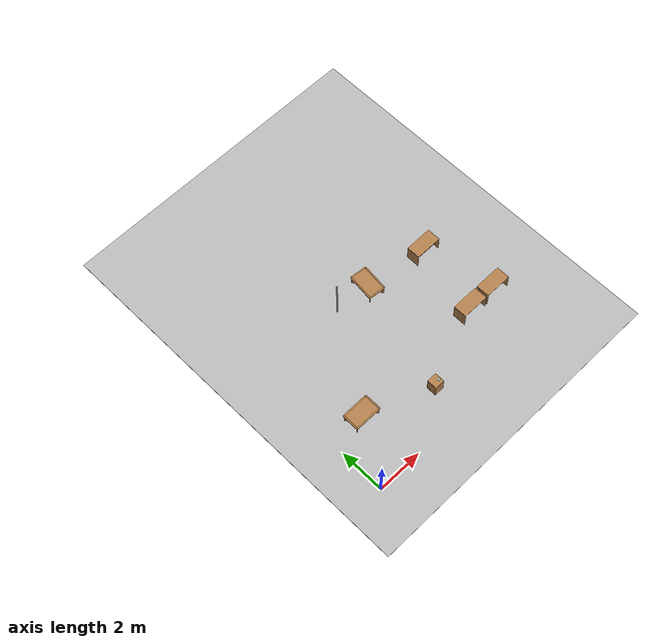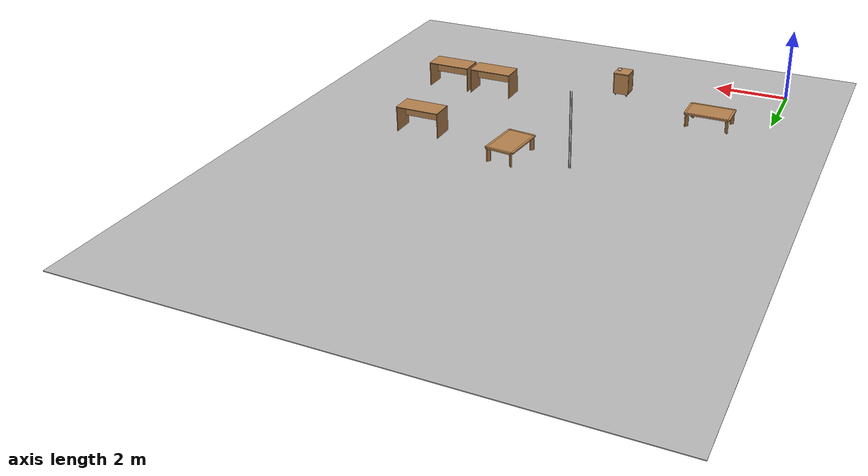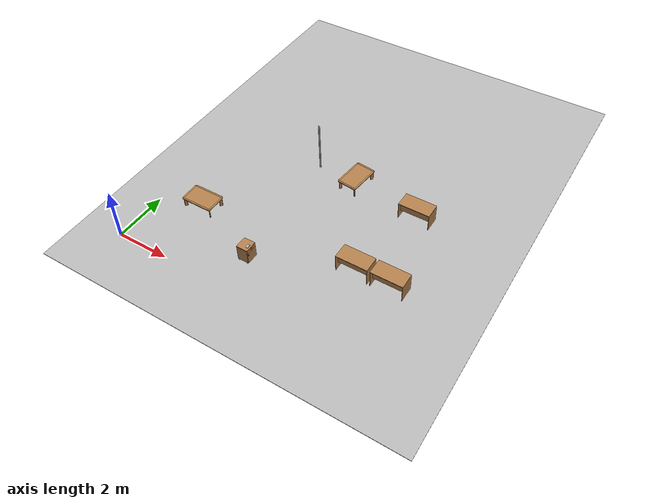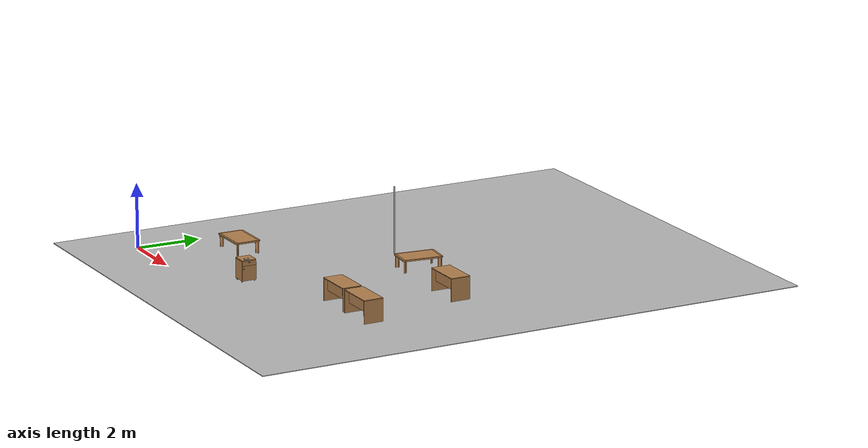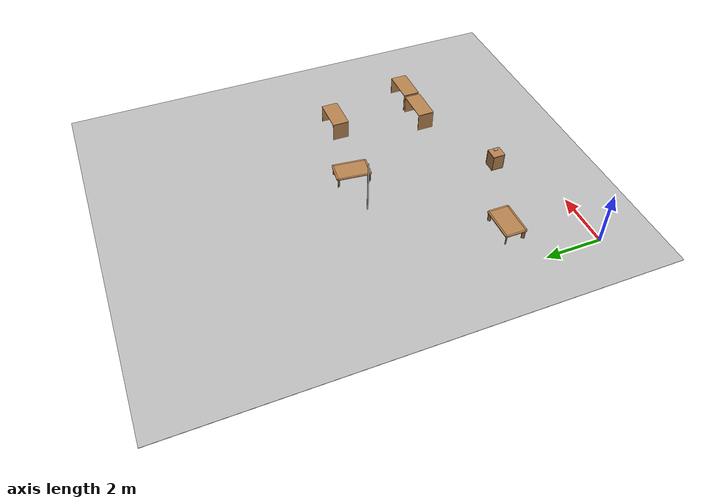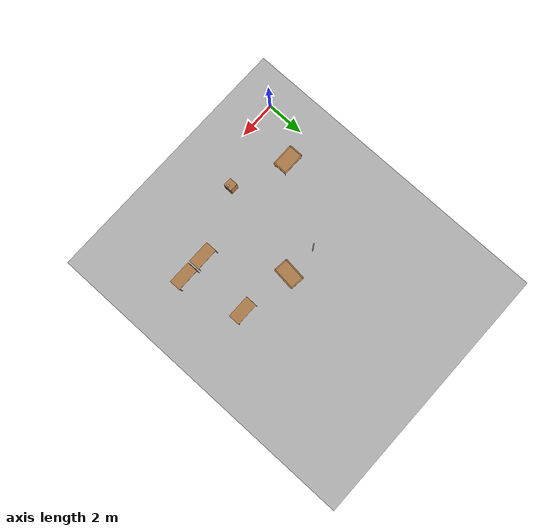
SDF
<sdf version="1.6">
 <world name="default">
  <model name="gplane">
   <pose>5.0375 6.59 0 0 -0 0</pose>
   <link name="body">
    <collision name="gplane_coll">
     <geometry><plane><normal>0 0 1</normal><size>10.075 13.18</size></plane></geometry>
     <surface><contact><ode><kp>1e+06</kp><kd>1</kd></ode></contact></surface>
     <laser_retro>2000</laser_retro>
    </collision>
    <visual name="gplane_vis">
     <geometry><plane><normal>0 0 1</normal><size>10.075 13.18</size></plane></geometry>
     <material>
      <script>
       <uri>model://base_materials/carpet/scripts</uri>
       <uri>model://base_materials/carpet/textures</uri>
       <name>carpet/carpet01</name>
      </script>
     </material>
     <cast_shadows>0</cast_shadows>
    </visual>
    <velocity_decay><linear>0</linear><angular>0</angular></velocity_decay>
   </link>
   <static>1</static>
  </model>
  <model name="door_stopper_x05y09a">
   <link name="door_frame">
    <visual name="stopper">
     <pose>0.0225 0.0175 1.025 0 -0 0</pose>
     <geometry><box><size>0.01 0.035 2.05</size></box></geometry>
     <material>
      <script><uri>model://base_materials/color/scripts</uri><name>hsr_color/white</name></script>
     </material>
    </visual>
    <collision name="collision_frame_1">
     <pose>0.0225 0.0175 1.025 0 -0 0</pose>
     <geometry><box><size>0.01 0.035 2.05</size></box></geometry>
    </collision>
    <visual name="frame_2">
     <pose>-0.0225 0.0175 1.025 0 -0 0</pose>
     <geometry><box><size>0.01 0.035 2.05</size></box></geometry>
     <material>
      <script><uri>model://base_materials/color/scripts</uri><name>hsr_color/white</name></script>
     </material>
    </visual>
    <collision name="collision_frame_2">
     <pose>-0.0225 0.0175 1.025 0 -0 0</pose>
     <geometry><box><size>0.01 0.035 2.05</size></box></geometry>
    </collision>
   </link>
   <static>1</static>
   <pose>4.075 6.425 0 0 -0 0</pose>
  </model>
  <model name="wagon">
   <link name="link">
    <inertial>
     <mass>10</mass>
     <inertia><ixx>1</ixx><ixy>0</ixy><ixz>0</ixz><iyy>1</iyy><iyz>0</iyz><izz>1</izz></inertia>
    </inertial>
    <visual name="left_board">
     <pose>-0.2325 0.01 0.345 0 -0 0</pose>
     <geometry><box><size>0.415 0.02 0.59</size></box></geometry>
     <material>
      <script><uri>model://base_materials/wood/scripts/wood.material</uri><name>base_materials/wood</name></script>
     </material>
    </visual>
    <collision name="collision_left_board">
     <pose>-0.2325 0.01 0.345 0 -0 0</pose>
     <geometry><box><size>0.415 0.02 0.59</size></box></geometry>
    </collision>
    <visual name="right_board">
     <pose>-0.2325 0.4325 0.345 0 -0 0</pose>
     <geometry><box><size>0.415 0.02 0.59</size></box></geometry>
     <material>
      <script><uri>model://base_materials/wood/scripts/wood.material</uri><name>base_materials/wood</name></script>
     </material>
    </visual>
    <collision name="collision_right_board">
     <pose>-0.2325 0.4325 0.345 0 -0 0</pose>
     <geometry><box><size>0.415 0.02 0.59</size></box></geometry>
    </collision>
    <visual name="top_board">
     <pose>-0.22 0.2225 0.655 0 -0 0</pose>
     <geometry><box><size>0.44 0.445 0.03</size></box></geometry>
     <material>
      <script><uri>model://base_materials/wood/scripts/wood.material</uri><name>base_materials/wood</name></script>
     </material>
    </visual>
    <collision name="collision_top_board">
     <pose>-0.22 0.2225 0.655 0 -0 0</pose>
     <geometry><box><size>0.44 0.445 0.03</size></box></geometry>
    </collision>
    <visual name="back_board">
     <pose>-0.425 0.2225 0.345 0 -0 0</pose>
     <geometry><box><size>0.02 0.405 0.59</size></box></geometry>
     <material>
      <script><uri>model://base_materials/wood/scripts/wood.material</uri><name>base_materials/wood</name></script>
     </material>
    </visual>
    <collision name="collision_back_board">
     <pose>-0.425 0.2225 0.345 0 -0 0</pose>
     <geometry><box><size>0.02 0.405 0.59</size></box></geometry>
    </collision>
    <visual name="bottom_board">
     <pose>-0.2325 0.2225 0.06 0 -0 0</pose>
     <geometry><box><size>0.415 0.405 0.02</size></box></geometry>
     <material>
      <script><uri>model://base_materials/wood/scripts/wood.material</uri><name>base_materials/wood</name></script>
     </material>
    </visual>
    <collision name="collision_bottom_board">
     <pose>-0.2325 0.2225 0.06 0 -0 0</pose>
     <geometry><box><size>0.415 0.405 0.02</size></box></geometry>
    </collision>
    <visual name="1st_drawer">
     <pose>-0.0125 0.2225 0.57 0 -0 0</pose>
     <geometry><box><size>0.025 0.445 0.14</size></box></geometry>
     <material>
      <script><uri>model://base_materials/wood/scripts/wood.material</uri><name>base_materials/wood</name></script>
     </material>
    </visual>
    <collision name="collision_1st_drawer">
     <pose>-0.0125 0.2225 0.57 0 -0 0</pose>
     <geometry><box><size>0.025 0.445 0.14</size></box></geometry>
    </collision>
    <visual name="1st_drawer_handle_l1">
     <pose>0.0115 0.1895 0.6 3.14159 1.57079 3.14159</pose>
     <geometry><cylinder><radius>0.007</radius><length>0.023</length></cylinder></geometry>
     <material>
      <ambient>0.18431 0.3098 0.3098 1</ambient>
      <diffuse>0.18431 0.3098 0.3098 1</diffuse>
      <specular>0.1 0.1 0.1 1</specular>
     </material>
    </visual>
    <collision name="collision_1st_drawer_handle_l1">
     <pose>0.0115 0.1895 0.6 3.14159 1.57079 3.14159</pose>
     <geometry><cylinder><radius>0.007</radius><length>0.023</length></cylinder></geometry>
    </collision>
    <visual name="1st_drawer_handle_l2">
     <pose>0.023 0.1895 0.6 0 -0 0</pose>
     <geometry><sphere><radius>0.007</radius></sphere></geometry>
     <material>
      <ambient>0.18431 0.3098 0.3098 1</ambient>
      <diffuse>0.18431 0.3098 0.3098 1</diffuse>
      <specular>0.1 0.1 0.1 1</specular>
     </material>
    </visual>
    <collision name="collision_1st_drawer_handle_l2">
     <pose>0.023 0.1895 0.6 0 -0 0</pose>
     <geometry><sphere><radius>0.007</radius></sphere></geometry>
    </collision>
    <visual name="1st_drawer_handle_r1">
     <pose>0.0115 0.2555 0.6 3.14159 1.57079 3.14159</pose>
     <geometry><cylinder><radius>0.007</radius><length>0.023</length></cylinder></geometry>
     <material>
      <ambient>0.18431 0.3098 0.3098 1</ambient>
      <diffuse>0.18431 0.3098 0.3098 1</diffuse>
      <specular>0.1 0.1 0.1 1</specular>
     </material>
    </visual>
    <collision name="collision_1st_drawer_handle_r1">
     <pose>0.0115 0.2555 0.6 3.14159 1.57079 3.14159</pose>
     <geometry><cylinder><radius>0.007</radius><length>0.023</length></cylinder></geometry>
    </collision>
    <visual name="1st_drawer_handle_r2">
     <pose>0.023 0.2555 0.6 0 -0 0</pose>
     <geometry><sphere><radius>0.007</radius></sphere></geometry>
     <material>
      <ambient>0.18431 0.3098 0.3098 1</ambient>
      <diffuse>0.18431 0.3098 0.3098 1</diffuse>
      <specular>0.1 0.1 0.1 1</specular>
     </material>
    </visual>
    <collision name="collision_1st_drawer_handle_r2">
     <pose>0.023 0.2555 0.6 0 -0 0</pose>
     <geometry><sphere><radius>0.007</radius></sphere></geometry>
    </collision>
    <visual name="1st_drawer_handle_center">
     <pose>0.023 0.2225 0.6 1.5708 -0 0</pose>
     <geometry><cylinder><radius>0.007</radius><length>0.066</length></cylinder></geometry>
     <material>
      <ambient>0.18431 0.3098 0.3098 1</ambient>
      <diffuse>0.18431 0.3098 0.3098 1</diffuse>
      <specular>0.1 0.1 0.1 1</specular>
     </material>
    </visual>
    <collision name="collision_1st_drawer_handle_center">
     <pose>0.023 0.2225 0.6 1.5708 -0 0</pose>
     <geometry><cylinder><radius>0.007</radius><length>0.066</length></cylinder></geometry>
    </collision>
    <visual name="2nd_drawer">
     <pose>-0.0125 0.2225 0.275 0 -0 0</pose>
     <geometry><box><size>0.025 0.445 0.45</size></box></geometry>
     <material>
      <script><uri>model://base_materials/wood/scripts/wood.material</uri><name>base_materials/wood</name></script>
     </material>
    </visual>
    <collision name="collision_2nd_drawer">
     <pose>-0.0125 0.2225 0.275 0 -0 0</pose>
     <geometry><box><size>0.025 0.445 0.45</size></box></geometry>
    </collision>
    <visual name="2nd_drawer_handle_top1">
     <pose>0.0115 0.04 0.47 3.14159 1.57079 3.14159</pose>
     <geometry><cylinder><radius>0.007</radius><length>0.023</length></cylinder></geometry>
     <material>
      <ambient>0.18431 0.3098 0.3098 1</ambient>
      <diffuse>0.18431 0.3098 0.3098 1</diffuse>
      <specular>0.1 0.1 0.1 1</specular>
     </material>
    </visual>
    <collision name="collision_2nd_drawer_handle_top1">
     <pose>0.0115 0.04 0.47 3.14159 1.57079 3.14159</pose>
     <geometry><cylinder><radius>0.007</radius><length>0.023</length></cylinder></geometry>
    </collision>
    <visual name="2nd_drawer_handle_top2">
     <pose>0.023 0.04 0.47 0 -0 0</pose>
     <geometry><sphere><radius>0.007</radius></sphere></geometry>
     <material>
      <ambient>0.18431 0.3098 0.3098 1</ambient>
      <diffuse>0.18431 0.3098 0.3098 1</diffuse>
      <specular>0.1 0.1 0.1 1</specular>
     </material>
    </visual>
    <collision name="2nd_drawer_handle_top2">
     <pose>0.023 0.04 0.47 0 -0 0</pose>
     <geometry><sphere><radius>0.007</radius></sphere></geometry>
    </collision>
    <visual name="2nd_drawer_handle_bottom1">
     <pose>0.0115 0.04 0.404 3.14159 1.57079 3.14159</pose>
     <geometry><cylinder><radius>0.007</radius><length>0.023</length></cylinder></geometry>
     <material>
      <ambient>0.18431 0.3098 0.3098 1</ambient>
      <diffuse>0.18431 0.3098 0.3098 1</diffuse>
      <specular>0.1 0.1 0.1 1</specular>
     </material>
    </visual>
    <collision name="collision_2nd_drawer_handle_bottom1">
     <pose>0.0115 0.04 0.404 3.14159 1.57079 3.14159</pose>
     <geometry><cylinder><radius>0.007</radius><length>0.023</length></cylinder></geometry>
    </collision>
    <visual name="2nd_drawer_handle_bottom2">
     <pose>0.023 0.04 0.404 0 -0 0</pose>
     <geometry><sphere><radius>0.007</radius></sphere></geometry>
     <material>
      <ambient>0.18431 0.3098 0.3098 1</ambient>
      <diffuse>0.18431 0.3098 0.3098 1</diffuse>
      <specular>0.1 0.1 0.1 1</specular>
     </material>
    </visual>
    <collision name="2nd_drawer_handle_bottom2">
     <pose>0.023 0.04 0.404 0 -0 0</pose>
     <geometry><sphere><radius>0.007</radius></sphere></geometry>
    </collision>
    <visual name="2nd_drawer_handle_center">
     <pose>0.023 0.04 0.437 0 -0 0</pose>
     <geometry><cylinder><radius>0.007</radius><length>0.066</length></cylinder></geometry>
     <material>
      <ambient>0.18431 0.3098 0.3098 1</ambient>
      <diffuse>0.18431 0.3098 0.3098 1</diffuse>
      <specular>0.1 0.1 0.1 1</specular>
     </material>
    </visual>
    <collision name="collision_2nd_drawer_handle_center">
     <pose>0.023 0.04 0.437 0 -0 0</pose>
     <geometry><cylinder><radius>0.007</radius><length>0.066</length></cylinder></geometry>
    </collision>
    <visual name="left_front_caster">
     <pose>-0.07 0.025 0.025 3.14159 1.57079 3.14159</pose>
     <geometry><cylinder><radius>0.025</radius><length>0.035</length></cylinder></geometry>
     <material><script><name>Gazebo/Black</name><uri>__default__</uri></script></material>
    </visual>
    <collision name="collision_left_front_caster">
     <pose>-0.07 0.025 0.025 3.14159 1.57079 3.14159</pose>
     <geometry><cylinder><radius>0.025</radius><length>0.035</length></cylinder></geometry>
    </collision>
    <visual name="right_front_caster">
     <pose>-0.07 0.42 0.025 3.14159 1.57079 3.14159</pose>
     <geometry><cylinder><radius>0.025</radius><length>0.035</length></cylinder></geometry>
     <material><script><name>Gazebo/Black</name><uri>__default__</uri></script></material>
    </visual>
    <collision name="collision_right_front_caster">
     <pose>-0.07 0.42 0.025 3.14159 1.57079 3.14159</pose>
     <geometry><cylinder><radius>0.025</radius><length>0.035</length></cylinder></geometry>
    </collision>
    <visual name="left_back_caster">
     <pose>-0.39 0.025 0.025 3.14159 1.57079 3.14159</pose>
     <geometry><cylinder><radius>0.025</radius><length>0.035</length></cylinder></geometry>
     <material><script><name>Gazebo/Black</name><uri>__default__</uri></script></material>
    </visual>
    <collision name="collision_left_back_caster">
     <pose>-0.39 0.025 0.025 3.14159 1.57079 3.14159</pose>
     <geometry><cylinder><radius>0.025</radius><length>0.035</length></cylinder></geometry>
    </collision>
    <visual name="right_back_caster">
     <pose>-0.39 0.42 0.025 3.14159 1.57079 3.14159</pose>
     <geometry><cylinder><radius>0.025</radius><length>0.035</length></cylinder></geometry>
     <material><script><name>Gazebo/Black</name><uri>__default__</uri></script></material>
    </visual>
    <collision name="collision_right_back_caster">
     <pose>-0.39 0.42 0.025 3.14159 1.57079 3.14159</pose>
     <geometry><cylinder><radius>0.025</radius><length>0.035</length></cylinder></geometry>
    </collision>
    <velocity_decay><linear>0</linear><angular>0</angular></velocity_decay>
   </link>
   <static>1</static>
   <pose>4.6 1.2 0 0 -0 0</pose>
  </model>
  <model name="nasal_cupsul">
   <link name="link">
    <inertial>
     <mass>0.1</mass>
     <inertia><ixx>0.0001</ixx><ixy>0</ixy><ixz>0</ixz><iyy>0.0001</iyy><iyz>0</iyz><izz>0.0001</izz></inertia>
    </inertial>
    <visual name="capsul">
     <geometry><box><size>0.083 0.135 0.026</size></box></geometry>
     <material>
      <script>
       <uri>model://nasal_inflammation_capsul/scripts</uri>
       <uri>model://nasal_inflammation_capsul/textures</uri>
       <name>oral_medicine/nasal_inflammation_capsule</name>
      </script>
     </material>
    </visual>
    <collision name="collision_capsul">
     <geometry><box><size>0.083 0.135 0.026</size></box></geometry>
     <surface>
      <bounce><restitution_coefficient>0.2</restitution_coefficient><threshold>0</threshold></bounce>
      <contact><ode><max_vel>10</max_vel></ode></contact>
     </surface>
    </collision>
    <velocity_decay><linear>0</linear><angular>0</angular></velocity_decay>
   </link>
   <static>0</static>
   <pose>4.50001 1.38 0.682993 0 0.000171 -0.000117</pose>
  </model>
  <model name="kitchen_lowtable">
   <link name="link">
    <inertial>
     <mass>10</mass>
     <inertia><ixx>1</ixx><ixy>0</ixy><ixz>0</ixz><iyy>1</iyy><iyz>0</iyz><izz>1</izz></inertia>
    </inertial>
    <visual name="center_board">
     <pose>0 0 0.38 0 -0 0</pose>
     <geometry><box><size>0.68 1.13 0.04</size></box></geometry>
     <material>
      <script><uri>model://base_materials/wood/scripts/wood.material</uri><name>base_materials/wood</name></script>
     </material>
    </visual>
    <collision name="collision_center_board">
     <pose>0 0 0.38 0 -0 0</pose>
     <geometry><box><size>0.68 1.13 0.04</size></box></geometry>
    </collision>
    <visual name="front_board">
     <pose>0.37 0 0.38 0 -0 0</pose>
     <geometry><box><size>0.06 1.13 0.04</size></box></geometry>
     <material>
      <script><uri>model://base_materials/wood/scripts/wood.material</uri><name>base_materials/wood</name></script>
     </material>
    </visual>
    <collision name="collision_front_board">
     <pose>0.37 0 0.38 0 -0 0</pose>
     <geometry><box><size>0.06 1.13 0.04</size></box></geometry>
    </collision>
    <visual name="back_board">
     <pose>-0.37 0 0.38 0 -0 0</pose>
     <geometry><box><size>0.06 1.13 0.04</size></box></geometry>
     <material>
      <script><uri>model://base_materials/wood/scripts/wood.material</uri><name>base_materials/wood</name></script>
     </material>
    </visual>
    <collision name="collision_back_board">
     <pose>-0.37 0 0.38 0 -0 0</pose>
     <geometry><box><size>0.06 1.13 0.04</size></box></geometry>
    </collision>
    <visual name="right_board">
     <pose>0 0.595 0.38 0 -0 0</pose>
     <geometry><box><size>0.68 0.06 0.04</size></box></geometry>
     <material>
      <script><uri>model://base_materials/wood/scripts/wood.material</uri><name>base_materials/wood</name></script>
     </material>
    </visual>
    <collision name="collision_right_board">
     <pose>0 0.595 0.38 0 -0 0</pose>
     <geometry><box><size>0.68 0.06 0.04</size></box></geometry>
    </collision>
    <visual name="left_board">
     <pose>0 -0.595 0.38 0 -0 0</pose>
     <geometry><box><size>0.68 0.06 0.04</size></box></geometry>
     <material>
      <script><uri>model://base_materials/wood/scripts/wood.material</uri><name>base_materials/wood</name></script>
     </material>
    </visual>
    <collision name="collision_left_board">
     <pose>0 -0.595 0.38 0 -0 0</pose>
     <geometry><box><size>0.68 0.06 0.04</size></box></geometry>
    </collision>
    <visual name="front_right_corner_board">
     <pose>0.34 0.565 0.38 0 -0 0</pose>
     <geometry><cylinder><radius>0.06</radius><length>0.039</length></cylinder></geometry>
     <material>
      <script><uri>model://base_materials/wood/scripts/wood.material</uri><name>base_materials/wood</name></script>
     </material>
    </visual>
    <collision name="collision_front_right_corner_board">
     <pose>0.34 0.565 0.38 0 -0 0</pose>
     <geometry><cylinder><radius>0.06</radius><length>0.039</length></cylinder></geometry>
    </collision>
    <visual name="front_left_corner_board">
     <pose>0.34 -0.565 0.38 0 -0 0</pose>
     <geometry><cylinder><radius>0.06</radius><length>0.039</length></cylinder></geometry>
     <material>
      <script><uri>model://base_materials/wood/scripts/wood.material</uri><name>base_materials/wood</name></script>
     </material>
    </visual>
    <collision name="collision_front_left_corner_board">
     <pose>0.34 -0.565 0.38 0 -0 0</pose>
     <geometry><cylinder><radius>0.06</radius><length>0.039</length></cylinder></geometry>
    </collision>
    <visual name="front_back_right_corner_board">
     <pose>-0.34 0.565 0.38 0 -0 0</pose>
     <geometry><cylinder><radius>0.06</radius><length>0.039</length></cylinder></geometry>
     <material>
      <script><uri>model://base_materials/wood/scripts/wood.material</uri><name>base_materials/wood</name></script>
     </material>
    </visual>
    <collision name="collision_back_right_corner_board">
     <pose>-0.34 0.565 0.38 0 -0 0</pose>
     <geometry><cylinder><radius>0.06</radius><length>0.039</length></cylinder></geometry>
    </collision>
    <visual name="front_back_left_corner_board">
     <pose>-0.34 -0.565 0.38 0 -0 0</pose>
     <geometry><cylinder><radius>0.06</radius><length>0.039</length></cylinder></geometry>
     <material>
      <script><uri>model://base_materials/wood/scripts/wood.material</uri><name>base_materials/wood</name></script>
     </material>
    </visual>
    <collision name="collision_back_left_corner_board">
     <pose>-0.34 -0.565 0.38 0 -0 0</pose>
     <geometry><cylinder><radius>0.06</radius><length>0.039</length></cylinder></geometry>
    </collision>
    <visual name="front_left_corner_frame1">
     <pose>0.345858 -0.57086 0.18 0 -0 0</pose>
     <geometry><cylinder><radius>0.02</radius><length>0.36</length></cylinder></geometry>
     <material>
      <script><uri>model://base_materials/wood/scripts/wood.material</uri><name>base_materials/wood</name></script>
     </material>
    </visual>
    <collision name="collision_front_left_corner_frame1">
     <pose>0.345858 -0.57086 0.18 0 -0 0</pose>
     <geometry><cylinder><radius>0.02</radius><length>0.36</length></cylinder></geometry>
    </collision>
    <visual name="front_left_corner_frame2">
     <pose>0.317574 -0.54257 0.18 0 -0 0.7854</pose>
     <geometry><box><size>0.04 0.08 0.36</size></box></geometry>
     <material>
      <script><uri>model://base_materials/wood/scripts/wood.material</uri><name>base_materials/wood</name></script>
     </material>
    </visual>
    <collision name="collision_front_left_corner_frame2">
     <pose>0.317574 -0.54257 0.18 0 -0 0.7854</pose>
     <geometry><box><size>0.04 0.08 0.36</size></box></geometry>
    </collision>
    <visual name="front_left_corner_frame3">
     <pose>0.289289 -0.51429 0.18 0 -0 0</pose>
     <geometry><cylinder><radius>0.02</radius><length>0.36</length></cylinder></geometry>
     <material>
      <script><uri>model://base_materials/wood/scripts/wood.material</uri><name>base_materials/wood</name></script>
     </material>
    </visual>
    <collision name="collision_front_left_corner_frame3">
     <pose>0.289289 -0.51429 0.18 0 -0 0</pose>
     <geometry><cylinder><radius>0.02</radius><length>0.36</length></cylinder></geometry>
    </collision>
    <visual name="front_right_corner_frame1">
     <pose>0.345858 0.57086 0.18 0 -0 0</pose>
     <geometry><cylinder><radius>0.02</radius><length>0.36</length></cylinder></geometry>
     <material>
      <script><uri>model://base_materials/wood/scripts/wood.material</uri><name>base_materials/wood</name></script>
     </material>
    </visual>
    <collision name="collision_front_right_corner_frame1">
     <pose>0.345858 0.57086 0.18 0 -0 0</pose>
     <geometry><cylinder><radius>0.02</radius><length>0.36</length></cylinder></geometry>
    </collision>
    <visual name="front_right_corner_frame2">
     <pose>0.317574 0.54257 0.18 0 0 -0.7854</pose>
     <geometry><box><size>0.04 0.08 0.36</size></box></geometry>
     <material>
      <script><uri>model://base_materials/wood/scripts/wood.material</uri><name>base_materials/wood</name></script>
     </material>
    </visual>
    <collision name="collision_front_right_corner_frame2">
     <pose>0.317574 0.54257 0.18 0 0 -0.7854</pose>
     <geometry><box><size>0.04 0.08 0.36</size></box></geometry>
    </collision>
    <visual name="front_right_corner_frame3">
     <pose>0.289289 0.51429 0.18 0 -0 0</pose>
     <geometry><cylinder><radius>0.02</radius><length>0.36</length></cylinder></geometry>
     <material>
      <script><uri>model://base_materials/wood/scripts/wood.material</uri><name>base_materials/wood</name></script>
     </material>
    </visual>
    <collision name="collision_front_right_corner_frame3">
     <pose>0.289289 0.51429 0.18 0 -0 0</pose>
     <geometry><cylinder><radius>0.02</radius><length>0.36</length></cylinder></geometry>
    </collision>
    <visual name="back_left_corner_frame1">
     <pose>-0.345858 -0.57086 0.18 0 -0 0</pose>
     <geometry><cylinder><radius>0.02</radius><length>0.36</length></cylinder></geometry>
     <material>
      <script><uri>model://base_materials/wood/scripts/wood.material</uri><name>base_materials/wood</name></script>
     </material>
    </visual>
    <collision name="collision_back_left_corner_frame1">
     <pose>-0.345858 -0.57086 0.18 0 -0 0</pose>
     <geometry><cylinder><radius>0.02</radius><length>0.36</length></cylinder></geometry>
    </collision>
    <visual name="back_left_corner_frame2">
     <pose>-0.317574 -0.54257 0.18 0 0 -0.7854</pose>
     <geometry><box><size>0.04 0.08 0.36</size></box></geometry>
     <material>
      <script><uri>model://base_materials/wood/scripts/wood.material</uri><name>base_materials/wood</name></script>
     </material>
    </visual>
    <collision name="collision_back_left_corner_frame2">
     <pose>-0.317574 -0.54257 0.18 0 0 -0.7854</pose>
     <geometry><box><size>0.04 0.08 0.36</size></box></geometry>
    </collision>
    <visual name="back_left_corner_frame3">
     <pose>-0.289289 -0.51429 0.18 0 -0 0</pose>
     <geometry><cylinder><radius>0.02</radius><length>0.36</length></cylinder></geometry>
     <material>
      <script><uri>model://base_materials/wood/scripts/wood.material</uri><name>base_materials/wood</name></script>
     </material>
    </visual>
    <collision name="collision_back_left_corner_frame3">
     <pose>-0.289289 -0.51429 0.18 0 -0 0</pose>
     <geometry><cylinder><radius>0.02</radius><length>0.36</length></cylinder></geometry>
    </collision>
    <visual name="back_right_corner_frame1">
     <pose>-0.345858 0.57086 0.18 0 -0 0</pose>
     <geometry><cylinder><radius>0.02</radius><length>0.36</length></cylinder></geometry>
     <material>
      <script><uri>model://base_materials/wood/scripts/wood.material</uri><name>base_materials/wood</name></script>
     </material>
    </visual>
    <collision name="collision_back_right_corner_frame1">
     <pose>-0.345858 0.57086 0.18 0 -0 0</pose>
     <geometry><cylinder><radius>0.02</radius><length>0.36</length></cylinder></geometry>
    </collision>
    <visual name="back_right_corner_frame2">
     <pose>-0.317574 0.54257 0.18 0 -0 0.7854</pose>
     <geometry><box><size>0.04 0.08 0.36</size></box></geometry>
     <material>
      <script><uri>model://base_materials/wood/scripts/wood.material</uri><name>base_materials/wood</name></script>
     </material>
    </visual>
    <collision name="collision_back_right_corner_frame2">
     <pose>-0.317574 0.54257 0.18 0 -0 0.7854</pose>
     <geometry><box><size>0.04 0.08 0.36</size></box></geometry>
    </collision>
    <visual name="back_right_corner_frame3">
     <pose>-0.289289 0.51429 0.18 0 -0 0</pose>
     <geometry><cylinder><radius>0.02</radius><length>0.36</length></cylinder></geometry>
     <material>
      <script><uri>model://base_materials/wood/scripts/wood.material</uri><name>base_materials/wood</name></script>
     </material>
    </visual>
    <collision name="collision_back_right_corner_frame3">
     <pose>-0.289289 0.51429 0.18 0 -0 0</pose>
     <geometry><cylinder><radius>0.02</radius><length>0.36</length></cylinder></geometry>
    </collision>
    <velocity_decay><linear>0</linear><angular>0</angular></velocity_decay>
   </link>
   <static>1</static>
   <pose>1.56 2.58 0 0 -0 1.5708</pose>
  </model>
  <model name="office_desk01">
   <link name="link">
    <inertial>
     <mass>10</mass>
     <inertia><ixx>1</ixx><ixy>0</ixy><ixz>0</ixz><iyy>1</iyy><iyz>0</iyz><izz>1</izz></inertia>
    </inertial>
    <visual name="top_board">
     <pose>-0.3 0.6 0.69 0 -0 0</pose>
     <geometry><box><size>0.6 1.2 0.02</size></box></geometry>
     <material>
      <script>
       <uri>model://base_materials/wood/scripts/wood.material</uri>
       <name>base_materials/dark_wood</name>
      </script>
     </material>
    </visual>
    <collision name="collision_top_board">
     <pose>-0.3 0.6 0.69 0 -0 0</pose>
     <geometry><box><size>0.6 1.2 0.02</size></box></geometry>
    </collision>
    <visual name="left_board">
     <pose>-0.3 0.01 0.34 0 -0 0</pose>
     <geometry><box><size>0.6 0.02 0.68</size></box></geometry>
     <material>
      <script>
       <uri>model://base_materials/wood/scripts/wood.material</uri>
       <name>base_materials/dark_wood</name>
      </script>
     </material>
    </visual>
    <collision name="collision_left_board">
     <pose>-0.3 0.01 0.34 0 -0 0</pose>
     <geometry><box><size>0.6 0.02 0.68</size></box></geometry>
    </collision>
    <visual name="right_board">
     <pose>-0.3 1.19 0.34 0 -0 0</pose>
     <geometry><box><size>0.6 0.02 0.68</size></box></geometry>
     <material>
      <script>
       <uri>model://base_materials/wood/scripts/wood.material</uri>
       <name>base_materials/dark_wood</name>
      </script>
     </material>
    </visual>
    <collision name="collision_right_board">
     <pose>-0.3 1.19 0.34 0 -0 0</pose>
     <geometry><box><size>0.6 0.02 0.68</size></box></geometry>
    </collision>
    <visual name="center_board">
     <pose>-0.14 0.6 0.49 0 -0 0</pose>
     <geometry><box><size>0.02 1.16 0.4</size></box></geometry>
     <material>
      <script>
       <uri>model://base_materials/wood/scripts/wood.material</uri>
       <name>base_materials/dark_wood</name>
      </script>
     </material>
    </visual>
    <collision name="ollision_center_board">
     <pose>-0.14 0.6 0.49 0 -0 0</pose>
     <geometry><box><size>0.02 1.16 0.4</size></box></geometry>
    </collision>
    <velocity_decay><linear>0</linear><angular>0</angular></velocity_decay>
   </link>
   <static>1</static>
   <pose>8.5 2.5 0 0 0 -1.5708</pose>
  </model>
  <model name="office_desk02">
   <link name="link">
    <inertial>
     <mass>10</mass>
     <inertia><ixx>1</ixx><ixy>0</ixy><ixz>0</ixz><iyy>1</iyy><iyz>0</iyz><izz>1</izz></inertia>
    </inertial>
    <visual name="top_board">
     <pose>-0.3 0.6 0.69 0 -0 0</pose>
     <geometry><box><size>0.6 1.2 0.02</size></box></geometry>
     <material>
      <script>
       <uri>model://base_materials/wood/scripts/wood.material</uri>
       <name>base_materials/dark_wood</name>
      </script>
     </material>
    </visual>
    <collision name="collision_top_board">
     <pose>-0.3 0.6 0.69 0 -0 0</pose>
     <geometry><box><size>0.6 1.2 0.02</size></box></geometry>
    </collision>
    <visual name="left_board">
     <pose>-0.3 0.01 0.34 0 -0 0</pose>
     <geometry><box><size>0.6 0.02 0.68</size></box></geometry>
     <material>
      <script>
       <uri>model://base_materials/wood/scripts/wood.material</uri>
       <name>base_materials/dark_wood</name>
      </script>
     </material>
    </visual>
    <collision name="collision_left_board">
     <pose>-0.3 0.01 0.34 0 -0 0</pose>
     <geometry><box><size>0.6 0.02 0.68</size></box></geometry>
    </collision>
    <visual name="right_board">
     <pose>-0.3 1.19 0.34 0 -0 0</pose>
     <geometry><box><size>0.6 0.02 0.68</size></box></geometry>
     <material>
      <script>
       <uri>model://base_materials/wood/scripts/wood.material</uri>
       <name>base_materials/dark_wood</name>
      </script>
     </material>
    </visual>
    <collision name="collision_right_board">
     <pose>-0.3 1.19 0.34 0 -0 0</pose>
     <geometry><box><size>0.6 0.02 0.68</size></box></geometry>
    </collision>
    <visual name="center_board">
     <pose>-0.14 0.6 0.49 0 -0 0</pose>
     <geometry><box><size>0.02 1.16 0.4</size></box></geometry>
     <material>
      <script>
       <uri>model://base_materials/wood/scripts/wood.material</uri>
       <name>base_materials/dark_wood</name>
      </script>
     </material>
    </visual>
    <collision name="ollision_center_board">
     <pose>-0.14 0.6 0.49 0 -0 0</pose>
     <geometry><box><size>0.02 1.16 0.4</size></box></geometry>
    </collision>
    <velocity_decay><linear>0</linear><angular>0</angular></velocity_decay>
   </link>
   <static>1</static>
   <pose>7.2 2.5 0 0 0 -1.5708</pose>
  </model>
  <model name="office_desk06">
   <link name="link">
    <inertial>
     <mass>10</mass>
     <inertia><ixx>1</ixx><ixy>0</ixy><ixz>0</ixz><iyy>1</iyy><iyz>0</iyz><izz>1</izz></inertia>
    </inertial>
    <visual name="top_board">
     <pose>-0.3 0.6 0.69 0 -0 0</pose>
     <geometry><box><size>0.6 1.2 0.02</size></box></geometry>
     <material>
      <script>
       <uri>model://base_materials/wood/scripts/wood.material</uri>
       <name>base_materials/dark_wood</name>
      </script>
     </material>
    </visual>
    <collision name="collision_top_board">
     <pose>-0.3 0.6 0.69 0 -0 0</pose>
     <geometry><box><size>0.6 1.2 0.02</size></box></geometry>
    </collision>
    <visual name="left_board">
     <pose>-0.3 0.01 0.34 0 -0 0</pose>
     <geometry><box><size>0.6 0.02 0.68</size></box></geometry>
     <material>
      <script>
       <uri>model://base_materials/wood/scripts/wood.material</uri>
       <name>base_materials/dark_wood</name>
      </script>
     </material>
    </visual>
    <collision name="collision_left_board">
     <pose>-0.3 0.01 0.34 0 -0 0</pose>
     <geometry><box><size>0.6 0.02 0.68</size></box></geometry>
    </collision>
    <visual name="right_board">
     <pose>-0.3 1.19 0.34 0 -0 0</pose>
     <geometry><box><size>0.6 0.02 0.68</size></box></geometry>
     <material>
      <script>
       <uri>model://base_materials/wood/scripts/wood.material</uri>
       <name>base_materials/dark_wood</name>
      </script>
     </material>
    </visual>
    <collision name="collision_right_board">
     <pose>-0.3 1.19 0.34 0 -0 0</pose>
     <geometry><box><size>0.6 0.02 0.68</size></box></geometry>
    </collision>
    <visual name="center_board">
     <pose>-0.14 0.6 0.49 0 -0 0</pose>
     <geometry><box><size>0.02 1.16 0.4</size></box></geometry>
     <material>
      <script>
       <uri>model://base_materials/wood/scripts/wood.material</uri>
       <name>base_materials/dark_wood</name>
      </script>
     </material>
    </visual>
    <collision name="ollision_center_board">
     <pose>-0.14 0.6 0.49 0 -0 0</pose>
     <geometry><box><size>0.02 1.16 0.4</size></box></geometry>
    </collision>
    <velocity_decay><linear>0</linear><angular>0</angular></velocity_decay>
   </link>
   <static>1</static>
   <pose>7.83617 5.64683 0 0 0 -1.5708</pose>
  </model>
  <model name="lawn_garden">
   <link name="link">
    <inertial>
     <mass>10</mass>
     <inertia><ixx>1</ixx><ixy>0</ixy><ixz>0</ixz><iyy>1</iyy><iyz>0</iyz><izz>1</izz></inertia>
    </inertial>
    <visual name="lawn_garden">
     <pose>0 0 -0.011 0 -0 0</pose>
     <geometry><box><size>14.075 17.185 0.02</size></box></geometry>
     <material>
      <script>
       <uri>model://base_materials/lawn/scripts/lawn.material</uri>
       <uri>model://base_materials/lawn/textures</uri>
       <name>lawn/lawn01</name>
      </script>
     </material>
    </visual>
    <collision name="collision_lawn_garden">
     <pose>0 0 -0.011 0 -0 0</pose>
     <geometry><box><size>14.075 17.185 0.02</size></box></geometry>
    </collision>
    <velocity_decay><linear>0</linear><angular>0</angular></velocity_decay>
   </link>
   <static>1</static>
   <pose>5.375 6.59 0 0 -0 0</pose>
  </model>
  <model name="kitchen_lowtable_0">
   <link name="link">
    <inertial>
     <mass>10</mass>
     <inertia><ixx>1</ixx><ixy>0</ixy><ixz>0</ixz><iyy>1</iyy><iyz>0</iyz><izz>1</izz></inertia>
    </inertial>
    <visual name="center_board">
     <pose>0 0 0.38 0 -0 0</pose>
     <geometry><box><size>0.68 1.13 0.04</size></box></geometry>
     <material>
      <script><uri>model://base_materials/wood/scripts/wood.material</uri><name>base_materials/wood</name></script>
     </material>
    </visual>
    <collision name="collision_center_board">
     <pose>0 0 0.38 0 -0 0</pose>
     <geometry><box><size>0.68 1.13 0.04</size></box></geometry>
    </collision>
    <visual name="front_board">
     <pose>0.37 0 0.38 0 -0 0</pose>
     <geometry><box><size>0.06 1.13 0.04</size></box></geometry>
     <material>
      <script><uri>model://base_materials/wood/scripts/wood.material</uri><name>base_materials/wood</name></script>
     </material>
    </visual>
    <collision name="collision_front_board">
     <pose>0.37 0 0.38 0 -0 0</pose>
     <geometry><box><size>0.06 1.13 0.04</size></box></geometry>
    </collision>
    <visual name="back_board">
     <pose>-0.37 0 0.38 0 -0 0</pose>
     <geometry><box><size>0.06 1.13 0.04</size></box></geometry>
     <material>
      <script><uri>model://base_materials/wood/scripts/wood.material</uri><name>base_materials/wood</name></script>
     </material>
    </visual>
    <collision name="collision_back_board">
     <pose>-0.37 0 0.38 0 -0 0</pose>
     <geometry><box><size>0.06 1.13 0.04</size></box></geometry>
    </collision>
    <visual name="right_board">
     <pose>0 0.595 0.38 0 -0 0</pose>
     <geometry><box><size>0.68 0.06 0.04</size></box></geometry>
     <material>
      <script><uri>model://base_materials/wood/scripts/wood.material</uri><name>base_materials/wood</name></script>
     </material>
    </visual>
    <collision name="collision_right_board">
     <pose>0 0.595 0.38 0 -0 0</pose>
     <geometry><box><size>0.68 0.06 0.04</size></box></geometry>
    </collision>
    <visual name="left_board">
     <pose>0 -0.595 0.38 0 -0 0</pose>
     <geometry><box><size>0.68 0.06 0.04</size></box></geometry>
     <material>
      <script><uri>model://base_materials/wood/scripts/wood.material</uri><name>base_materials/wood</name></script>
     </material>
    </visual>
    <collision name="collision_left_board">
     <pose>0 -0.595 0.38 0 -0 0</pose>
     <geometry><box><size>0.68 0.06 0.04</size></box></geometry>
    </collision>
    <visual name="front_right_corner_board">
     <pose>0.34 0.565 0.38 0 -0 0</pose>
     <geometry><cylinder><radius>0.06</radius><length>0.039</length></cylinder></geometry>
     <material>
      <script><uri>model://base_materials/wood/scripts/wood.material</uri><name>base_materials/wood</name></script>
     </material>
    </visual>
    <collision name="collision_front_right_corner_board">
     <pose>0.34 0.565 0.38 0 -0 0</pose>
     <geometry><cylinder><radius>0.06</radius><length>0.039</length></cylinder></geometry>
    </collision>
    <visual name="front_left_corner_board">
     <pose>0.34 -0.565 0.38 0 -0 0</pose>
     <geometry><cylinder><radius>0.06</radius><length>0.039</length></cylinder></geometry>
     <material>
      <script><uri>model://base_materials/wood/scripts/wood.material</uri><name>base_materials/wood</name></script>
     </material>
    </visual>
    <collision name="collision_front_left_corner_board">
     <pose>0.34 -0.565 0.38 0 -0 0</pose>
     <geometry><cylinder><radius>0.06</radius><length>0.039</length></cylinder></geometry>
    </collision>
    <visual name="front_back_right_corner_board">
     <pose>-0.34 0.565 0.38 0 -0 0</pose>
     <geometry><cylinder><radius>0.06</radius><length>0.039</length></cylinder></geometry>
     <material>
      <script><uri>model://base_materials/wood/scripts/wood.material</uri><name>base_materials/wood</name></script>
     </material>
    </visual>
    <collision name="collision_back_right_corner_board">
     <pose>-0.34 0.565 0.38 0 -0 0</pose>
     <geometry><cylinder><radius>0.06</radius><length>0.039</length></cylinder></geometry>
    </collision>
    <visual name="front_back_left_corner_board">
     <pose>-0.34 -0.565 0.38 0 -0 0</pose>
     <geometry><cylinder><radius>0.06</radius><length>0.039</length></cylinder></geometry>
     <material>
      <script><uri>model://base_materials/wood/scripts/wood.material</uri><name>base_materials/wood</name></script>
     </material>
    </visual>
    <collision name="collision_back_left_corner_board">
     <pose>-0.34 -0.565 0.38 0 -0 0</pose>
     <geometry><cylinder><radius>0.06</radius><length>0.039</length></cylinder></geometry>
    </collision>
    <visual name="front_left_corner_frame1">
     <pose>0.345858 -0.57086 0.18 0 -0 0</pose>
     <geometry><cylinder><radius>0.02</radius><length>0.36</length></cylinder></geometry>
     <material>
      <script><uri>model://base_materials/wood/scripts/wood.material</uri><name>base_materials/wood</name></script>
     </material>
    </visual>
    <collision name="collision_front_left_corner_frame1">
     <pose>0.345858 -0.57086 0.18 0 -0 0</pose>
     <geometry><cylinder><radius>0.02</radius><length>0.36</length></cylinder></geometry>
    </collision>
    <visual name="front_left_corner_frame2">
     <pose>0.317574 -0.54257 0.18 0 -0 0.7854</pose>
     <geometry><box><size>0.04 0.08 0.36</size></box></geometry>
     <material>
      <script><uri>model://base_materials/wood/scripts/wood.material</uri><name>base_materials/wood</name></script>
     </material>
    </visual>
    <collision name="collision_front_left_corner_frame2">
     <pose>0.317574 -0.54257 0.18 0 -0 0.7854</pose>
     <geometry><box><size>0.04 0.08 0.36</size></box></geometry>
    </collision>
    <visual name="front_left_corner_frame3">
     <pose>0.289289 -0.51429 0.18 0 -0 0</pose>
     <geometry><cylinder><radius>0.02</radius><length>0.36</length></cylinder></geometry>
     <material>
      <script><uri>model://base_materials/wood/scripts/wood.material</uri><name>base_materials/wood</name></script>
     </material>
    </visual>
    <collision name="collision_front_left_corner_frame3">
     <pose>0.289289 -0.51429 0.18 0 -0 0</pose>
     <geometry><cylinder><radius>0.02</radius><length>0.36</length></cylinder></geometry>
    </collision>
    <visual name="front_right_corner_frame1">
     <pose>0.345858 0.57086 0.18 0 -0 0</pose>
     <geometry><cylinder><radius>0.02</radius><length>0.36</length></cylinder></geometry>
     <material>
      <script><uri>model://base_materials/wood/scripts/wood.material</uri><name>base_materials/wood</name></script>
     </material>
    </visual>
    <collision name="collision_front_right_corner_frame1">
     <pose>0.345858 0.57086 0.18 0 -0 0</pose>
     <geometry><cylinder><radius>0.02</radius><length>0.36</length></cylinder></geometry>
    </collision>
    <visual name="front_right_corner_frame2">
     <pose>0.317574 0.54257 0.18 0 0 -0.7854</pose>
     <geometry><box><size>0.04 0.08 0.36</size></box></geometry>
     <material>
      <script><uri>model://base_materials/wood/scripts/wood.material</uri><name>base_materials/wood</name></script>
     </material>
    </visual>
    <collision name="collision_front_right_corner_frame2">
     <pose>0.317574 0.54257 0.18 0 0 -0.7854</pose>
     <geometry><box><size>0.04 0.08 0.36</size></box></geometry>
    </collision>
    <visual name="front_right_corner_frame3">
     <pose>0.289289 0.51429 0.18 0 -0 0</pose>
     <geometry><cylinder><radius>0.02</radius><length>0.36</length></cylinder></geometry>
     <material>
      <script><uri>model://base_materials/wood/scripts/wood.material</uri><name>base_materials/wood</name></script>
     </material>
    </visual>
    <collision name="collision_front_right_corner_frame3">
     <pose>0.289289 0.51429 0.18 0 -0 0</pose>
     <geometry><cylinder><radius>0.02</radius><length>0.36</length></cylinder></geometry>
    </collision>
    <visual name="back_left_corner_frame1">
     <pose>-0.345858 -0.57086 0.18 0 -0 0</pose>
     <geometry><cylinder><radius>0.02</radius><length>0.36</length></cylinder></geometry>
     <material>
      <script><uri>model://base_materials/wood/scripts/wood.material</uri><name>base_materials/wood</name></script>
     </material>
    </visual>
    <collision name="collision_back_left_corner_frame1">
     <pose>-0.345858 -0.57086 0.18 0 -0 0</pose>
     <geometry><cylinder><radius>0.02</radius><length>0.36</length></cylinder></geometry>
    </collision>
    <visual name="back_left_corner_frame2">
     <pose>-0.317574 -0.54257 0.18 0 0 -0.7854</pose>
     <geometry><box><size>0.04 0.08 0.36</size></box></geometry>
     <material>
      <script><uri>model://base_materials/wood/scripts/wood.material</uri><name>base_materials/wood</name></script>
     </material>
    </visual>
    <collision name="collision_back_left_corner_frame2">
     <pose>-0.317574 -0.54257 0.18 0 0 -0.7854</pose>
     <geometry><box><size>0.04 0.08 0.36</size></box></geometry>
    </collision>
    <visual name="back_left_corner_frame3">
     <pose>-0.289289 -0.51429 0.18 0 -0 0</pose>
     <geometry><cylinder><radius>0.02</radius><length>0.36</length></cylinder></geometry>
     <material>
      <script><uri>model://base_materials/wood/scripts/wood.material</uri><name>base_materials/wood</name></script>
     </material>
    </visual>
    <collision name="collision_back_left_corner_frame3">
     <pose>-0.289289 -0.51429 0.18 0 -0 0</pose>
     <geometry><cylinder><radius>0.02</radius><length>0.36</length></cylinder></geometry>
    </collision>
    <visual name="back_right_corner_frame1">
     <pose>-0.345858 0.57086 0.18 0 -0 0</pose>
     <geometry><cylinder><radius>0.02</radius><length>0.36</length></cylinder></geometry>
     <material>
      <script><uri>model://base_materials/wood/scripts/wood.material</uri><name>base_materials/wood</name></script>
     </material>
    </visual>
    <collision name="collision_back_right_corner_frame1">
     <pose>-0.345858 0.57086 0.18 0 -0 0</pose>
     <geometry><cylinder><radius>0.02</radius><length>0.36</length></cylinder></geometry>
    </collision>
    <visual name="back_right_corner_frame2">
     <pose>-0.317574 0.54257 0.18 0 -0 0.7854</pose>
     <geometry><box><size>0.04 0.08 0.36</size></box></geometry>
     <material>
      <script><uri>model://base_materials/wood/scripts/wood.material</uri><name>base_materials/wood</name></script>
     </material>
    </visual>
    <collision name="collision_back_right_corner_frame2">
     <pose>-0.317574 0.54257 0.18 0 -0 0.7854</pose>
     <geometry><box><size>0.04 0.08 0.36</size></box></geometry>
    </collision>
    <visual name="back_right_corner_frame3">
     <pose>-0.289289 0.51429 0.18 0 -0 0</pose>
     <geometry><cylinder><radius>0.02</radius><length>0.36</length></cylinder></geometry>
     <material>
      <script><uri>model://base_materials/wood/scripts/wood.material</uri><name>base_materials/wood</name></script>
     </material>
    </visual>
    <collision name="collision_back_right_corner_frame3">
     <pose>-0.289289 0.51429 0.18 0 -0 0</pose>
     <geometry><cylinder><radius>0.02</radius><length>0.36</length></cylinder></geometry>
    </collision>
    <velocity_decay><linear>0</linear><angular>0</angular></velocity_decay>
   </link>
   <static>1</static>
   <pose>5.69862 6.37737 0 0 0 -0.106643</pose>
  </model>
 </world>
</sdf>
